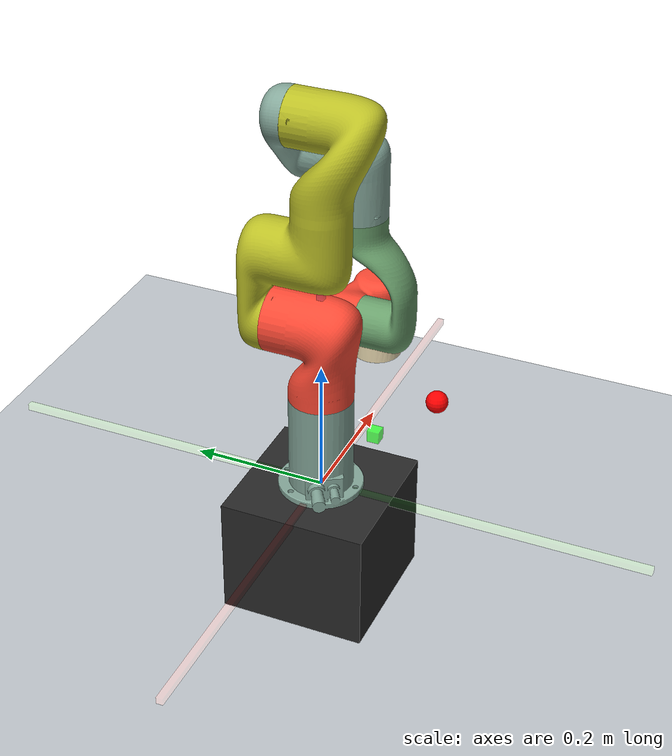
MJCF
<?xml version="1.0" encoding="utf-8"?>
<!--
Author: Julio Cesar Ramirez Ceballos
Institution: ESTIA
Created: 02/2022
Licence: MIT
-->

<mujoco>
    <compiler angle="degree" coordinate="local" meshdir="../assets/stls" texturedir="../textures"></compiler>
    <option timestep="0.002" gravity="0 0 -9.8">
        <flag warmstart="enable"></flag>
    </option>

    <include file="shared.xml"></include>

    <worldbody>
        <body name="floor0" pos="0 0 0">
            <site name="target0" pos="0.5 0 -0.165" size="0.02 0.02 0.02" rgba="1 0 0 1" type="sphere"></site>
        </body>

        <include file="xarm6.xml"></include>

        <light directional="true" diffuse=".4 .4 .4" specular="0.1 0.1 0.1" pos="0 0 5.0" dir="0 0 -1" castshadow="false"/>
        <light directional="true" diffuse=".6 .6 .6" specular="0.2 0.2 0.2" pos="0 0 4" dir="0 0 -1"/>

        <geom name="ground" type="plane" size="0 0 1" pos="0 0 -0.185" quat="1 0 0 0" material="matplane" condim="1"/>
    </worldbody>

    <actuator>
        <motor name="robot0:shoulder_pan_joint" gear="1000" joint="robot0:shoulder_pan_joint"/>
        <motor name="robot0:shoulder_lift_joint" gear="1000" joint="robot0:shoulder_lift_joint"/>
        <motor name="robot0:elbow_flex_joint" gear="1000" joint="robot0:elbow_flex_joint"/>
        <motor name="robot0:forearm_roll_joint" gear="1000" joint="robot0:forearm_roll_joint"/>
        <motor name="robot0:wrist_flex_joint" gear="1000" joint="robot0:wrist_flex_joint"/>
        <motor name="robot0:wrist_roll_joint" gear="1000" joint="robot0:wrist_roll_joint"/>
    </actuator>
</mujoco>

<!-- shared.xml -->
<mujoco>
    <visual>
        <rgba haze="0.15 0.25 0.35 1"/>
        <quality shadowsize="2048"/>
        <map stiffness="700" shadowscale="0.5" fogstart="10" fogend="15" zfar="40" haze="0.3"/>
    </visual>

    <asset>
        <texture type="skybox" builtin="gradient" rgb1="0.0 0.33 0.47" rgb2="0.4 0.5 0.4" width="32" height="32"></texture>
        <texture name="texplane" type="2d" builtin="checker" rgb1=".2 .3 .4" rgb2=".1 0.15 0.2"
            width="512" height="512" mark="cross" markrgb=".8 .8 .8"/>
        <material name="matplane" reflectance="0.3" texture="texplane" texrepeat="1 1" texuniform="true"/>
        <material name="floor_mat" specular="0" shininess="0.5" reflectance="0" rgba="0.2 0.2 0.2 1"></material>

        <material name="grayd" shininess="0.3" specular="0.4" reflectance=".3" rgba="0.15686275 0.15686275 0.15686275 1"></material>
        <material name="redd" shininess="0.3" specular="0.4" reflectance=".3" rgba="0.8 0.14117647 0.11372549 1"></material>
        <material name="yellowd" shininess="0.3" specular="0.4" reflectance=".3" rgba="0.59607843 0.59215686 0.10196078 1"></material>
        <material name="oranged" shininess="0.3" specular="0.4" reflectance=".3" rgba="0.84313725 0.6 0.12941176 1"></material>
        <material name="blued" shininess="0.3" specular="0.4" reflectance=".3" rgba="0.27058824 0.52156863 0.53333333 1"></material>
        <material name="purpled" shininess="0.3" specular="0.4" reflectance=".3" rgba="0.69411765 0.38431373 0.5254902  1"></material>
        <material name="greend" shininess="0.3" specular="0.4" reflectance=".3" rgba="0.40784314 0.61568627 0.41568627 1"></material>
        <material name="whited" shininess="0.3" specular="0.4" reflectance=".3" rgba="0.65882353 0.6 0.51764706 1"></material>
        <material name="grayl" shininess="0.3" specular="0.4" reflectance=".3" rgba="0.57254902 0.51372549 0.45490196 1"></material>
        <material name="redl" shininess="0.3" specular="0.4" reflectance=".3" rgba="0.98431373 0.28627451 0.20392157 1"></material>
        <material name="yellowl" shininess="0.3" specular="0.4" reflectance=".3" rgba="0.72156863 0.73333333 0.14901961 1"></material>
        <material name="orangel" shininess="0.3" specular="0.4" reflectance=".3" rgba="0.98039216 0.74117647 0.18431373 1"></material>
        <material name="bluel" shininess="0.3" specular="0.4" reflectance=".3" rgba="0.51372549 0.64705882 0.59607843 1"></material>
        <material name="purplel" shininess="0.3" specular="0.4" reflectance=".3" rgba="0.82745098 0.5254902  0.60784314 1"></material>
        <material name="greenl" shininess="0.3" specular="0.4" reflectance=".3" rgba="0.55686275 0.75294118 0.48627451 1"></material>
        <material name="whitel" shininess="0.3" specular="0.4" reflectance=".3" rgba="0.92156863 0.85882353 0.69803922 1"></material>

        <mesh file="J1.stl" name="robot0:shoulder_pan_link"></mesh>
        <mesh file="J2.stl" name="robot0:shoulder_lift_link"></mesh>
        <mesh file="J3.stl" name="robot0:elbow_flex_link"></mesh>
        <mesh file="J4.stl" name="robot0:forearm_roll_link"></mesh>
        <mesh file="J5.stl" name="robot0:wrist_flex_link"></mesh>
        <mesh file="J6.stl" name="robot0:wrist_roll_link"></mesh>
        <mesh file="Tool.stl" name="robot0:tool_link"></mesh>
        <mesh file="gripper/meshes/base_link.STL" name="robot0:gripper_base_link"/>
        <mesh file="gripper/meshes/left_finger.STL" name="robot0:left_finger"/>
        <mesh file="gripper/meshes/left_inner_knuckle.STL" name="robot0:left_inner_knuckle"/>
        <mesh file="gripper/meshes/left_outer_knuckle.STL" name="robot0:left_outer_knuckle"/>
        <mesh file="gripper/meshes/right_finger.STL" name="robot0:right_finger"/>
        <mesh file="gripper/meshes/right_inner_knuckle.STL" name="robot0:right_inner_knuckle"/>
        <mesh file="gripper/meshes/right_outer_knuckle.STL" name="robot0:right_outer_knuckle"/>
    </asset>

    <equality>
        <weld body1="robot0:gripper_link" body2="robot0:mocap" solimp="0.9 0.95 0.01" solref="0.02 1"></weld>
    </equality>

    <default>
        <default class="robot0:xarm6">
            <geom margin="0.001" solimp="0.99 0.99 0.01" solref="0.01 1" type="mesh" user="0"></geom>
            <joint armature="1" damping="50" frictionloss="0" stiffness="0" limited="true"></joint>
        </default>
    </default>
</mujoco>

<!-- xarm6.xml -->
<mujoco>
    <body mocap="true" name="robot0:mocap" pos="0 0 0" quat="0 0 0 0"> <!-- pos="0.207365 0.000911 0.039464"> -->
        <geom conaffinity="0" contype="0" pos="0 0 0" rgba="0 0.5 0 0.7" size="0.005 0.005 0.005" type="box"></geom>
        <geom conaffinity="0" contype="0" pos="0 0 0" rgba="0.5 0 0 0.1" size="0.5 0.005 0.005" type="box"></geom>
        <geom conaffinity="0" contype="0" pos="0 0 0" rgba="0 0.5 0 0.1" size="0.005 0.5 0.005" type="box"></geom>
        <geom conaffinity="0" contype="0" pos="0 0 0" rgba="0 0 0.5 0.1" size="0.005 0.005 0.5" type="box"></geom>
    </body>
    <body childclass="robot0:xarm6" name="robot0:base_link" pos="0 0 0">
        <joint armature="0.0001" axis="1 0 0" damping="1e+11" name="robot0:slide0" pos="0 0 0" type="slide" limited="false"></joint>
        <joint armature="0.0001" axis="0 1 0" damping="1e+11" name="robot0:slide1" pos="0 0 0" type="slide" limited="false"></joint>
        <joint armature="0.0001" axis="0 0 1" damping="1e+11" name="robot0:slide2" pos="0 0 0" type="slide" limited="false"></joint>
        <inertial diaginertia="0 0 0" mass="12.2" pos="0 0 0"></inertial>
        <geom name="robot0:base_link" pos="0 0 -0.0925" size="0.11 0.11 0.0925" type="box" material="grayd"></geom>

        <body name="robot0:shoulder_pan_link" pos="0 0 0" euler="0 0 0">
            <geom name="robot0:shoulder_pan_link" type="mesh" mesh="robot0:shoulder_pan_link" pos="0 0 0" material="bluel" euler="0 0 180"></geom>
            <inertial pos="0.001343 0.000671 0.072474" mass="1.872" diaginertia="0.5106 0.5207 0.2403"></inertial>

            <body name="robot0:shoulder_lift_link" pos="0 0 0.1538" euler="0 0 0">
                <inertial diaginertia="0.6252 0.5179 0.3507" mass="2.121" pos="-0.000212 -0.007394 0.085087"></inertial>
                <joint name="robot0:shoulder_pan_joint" axis="0 0 1" range="-360 360"></joint>
                <geom name="robot0:shoulder_lift_link" type="mesh" mesh="robot0:shoulder_lift_link" material="redl" euler="0 0 180"></geom>

                <body name="robot0:elbow_flex_link" pos="0.000350 0.075295 0.112000" euler="-90 0 -90">
                    <inertial diaginertia="1.39208 4.8561 4.3044" mass="4.221" pos="-0.166244 0.013808 -0.049289"></inertial>
                    <joint name="robot0:shoulder_lift_joint" axis="0 0 1" range="-118 120"></joint>
                    <geom name="robot0:elbow_flex_link" type="mesh" mesh="robot0:elbow_flex_link" material="yellowl" euler="0 0 180"></geom>

                    <body name="robot0:forearm_roll_link" pos="0.284550 0.053312 -0.008303" euler="0 0 90">
                        <inertial diaginertia="0.8452 0.6215 0.7184" mass="2.084" pos="0.053322 0.081421 -0.02986"></inertial>
                        <joint name="robot0:elbow_flex_joint" axis="0 0 1" range="-225 11"></joint>
                        <geom name="robot0:forearm_roll_link" type="mesh" mesh="robot0:forearm_roll_link" material="bluel" euler="0 0 0"></geom>

                        <body name="robot0:wrist_flex_link" pos="0.077700 0.169121 -0.067495" euler="-90 0 0">
                            <inertial diaginertia="0.6306 0.6999 0.1661" mass="1.263" pos="0.032424 0.000174 0.101052"></inertial>
                            <joint name="robot0:forearm_roll_joint" axis="0 0 1" range="-360 360"></joint>
                            <geom name="robot0:wrist_flex_link" type="mesh" mesh="robot0:wrist_flex_link" material="greend" euler="0 0 90"></geom>

                            <body name="robot0:wrist_roll_link" pos="-0.000006 0.004747 0.172996" euler="90 0 0">
                                <inertial diaginertia="0.1346 0.2327 0.2669" mass="1.157" pos="-0.048945 -0.11379 0.013355"></inertial>
                                <joint name="robot0:wrist_flex_joint" axis="0 0 1" range="-97 180"></joint>
                                <geom name="robot0:wrist_roll_link" type="mesh" mesh="robot0:wrist_roll_link" material="redl" euler="0 0 180"></geom>

                                <body name="robot0:tool_link" pos="0.076010 0.068771 0.004339" euler="-90 0 0">
                                    <inertial diaginertia="0.0132 0.0130 0.0224" mass="0.308" pos="0.00033 0 0.013291"></inertial>
                                    <joint name="robot0:wrist_roll_joint" axis="0 0 1" range="-360 360"></joint>
                                    <geom name="robot0:tool_link" type="mesh" mesh="robot0:tool_link" material="whitel" euler="0 0 90"></geom>
                                    <body name="robot0:gripper_link" pos="0 0 0.185" quat="1 0 0 0">
                                        <!-- comment this line to not include the gripper -->
                                        <site name="robot0:grip" pos="0 0 0" rgba="0 1 0 .7" size="0.01 0.01 0.01" type="box"></site>
                                    </body>
                                </body>
                            </body>
                        </body>
                    </body>
                </body>
            </body>
        </body>
    </body>
</mujoco>
